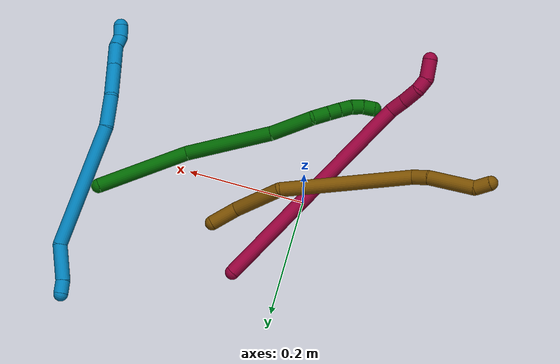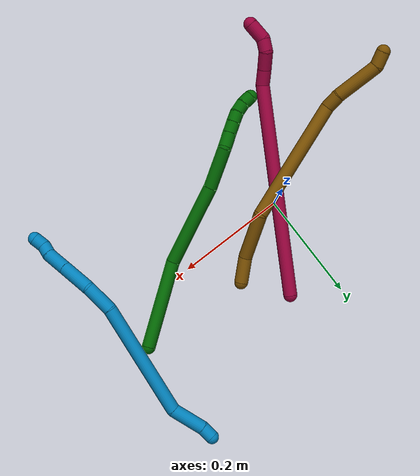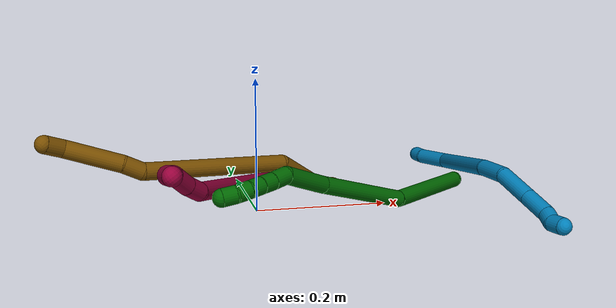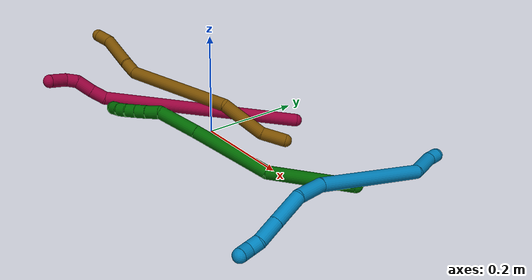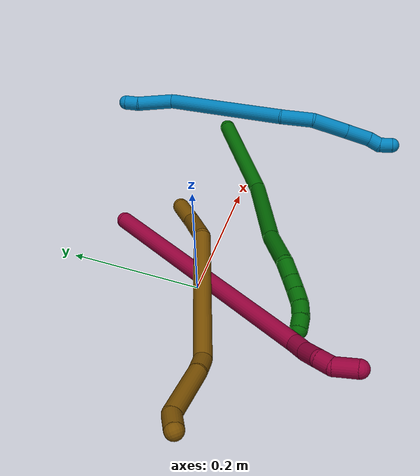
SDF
<sdf version="1.7">
 <world name="default">
  <model name="6">
   <static>0</static>
   <link name="6">
    <collision name="collision-cylinder-e_1_1_4">
     <pose>-0.076338 0.022249 0.011051 -1.10981 -1.25618 0.845954</pose>
     <geometry><cylinder><radius>0.0125</radius><length>0.160558</length></cylinder></geometry>
     <surface>
      <friction><ode><mu>1.16</mu><mu2>1.16</mu2><slip1>0</slip1><slip2>0</slip2></ode></friction>
      <contact><ode><kp>1e+06</kp><kd>1</kd><max_vel>0</max_vel><min_depth>0.001</min_depth></ode></contact>
     </surface>
    </collision>
    <visual name="visual-cylinder-e_1_1_4">
     <pose>-0.076338 0.022249 0.011051 -1.10981 -1.25618 0.845954</pose>
     <geometry><cylinder><radius>0.0125</radius><length>0.160558</length></cylinder></geometry>
     <material><ambient>0 0.392157 0.003922 1</ambient></material>
    </visual>
    <collision name="collision-cylinder-e_2_4_5">
     <pose>-0.21326 0.083544 0.049692 -0.955645 -0.902697 0.491858</pose>
     <geometry><cylinder><radius>0.0125</radius><length>0.154352</length></cylinder></geometry>
     <surface>
      <friction><ode><mu>1.16</mu><mu2>1.16</mu2><slip1>0</slip1><slip2>0</slip2></ode></friction>
      <contact><ode><kp>1e+06</kp><kd>1</kd><max_vel>0</max_vel><min_depth>0.001</min_depth></ode></contact>
     </surface>
    </collision>
    <visual name="visual-cylinder-e_2_4_5">
     <pose>-0.21326 0.083544 0.049692 -0.955645 -0.902697 0.491858</pose>
     <geometry><cylinder><radius>0.0125</radius><length>0.154352</length></cylinder></geometry>
     <material><ambient>0 0.392157 0.003922 1</ambient></material>
    </visual>
    <collision name="collision-cylinder-e_3_5_6">
     <pose>-0.30433 0.138268 0.094002 -0.753262 -0.926125 0.389917</pose>
     <geometry><cylinder><radius>0.0125</radius><length>0.076284</length></cylinder></geometry>
     <surface>
      <friction><ode><mu>1.16</mu><mu2>1.16</mu2><slip1>0</slip1><slip2>0</slip2></ode></friction>
      <contact><ode><kp>1e+06</kp><kd>1</kd><max_vel>0</max_vel><min_depth>0.001</min_depth></ode></contact>
     </surface>
    </collision>
    <visual name="visual-cylinder-e_3_5_6">
     <pose>-0.30433 0.138268 0.094002 -0.753262 -0.926125 0.389917</pose>
     <geometry><cylinder><radius>0.0125</radius><length>0.076284</length></cylinder></geometry>
     <material><ambient>0 0.392157 0.003922 1</ambient></material>
    </visual>
    <collision name="collision-cylinder-e_4_6_7">
     <pose>-0.348075 0.157754 0.110823 -1.54417 -1.29101 1.26551</pose>
     <geometry><cylinder><radius>0.0125</radius><length>0.02759</length></cylinder></geometry>
     <surface>
      <friction><ode><mu>1.16</mu><mu2>1.16</mu2><slip1>0</slip1><slip2>0</slip2></ode></friction>
      <contact><ode><kp>1e+06</kp><kd>1</kd><max_vel>0</max_vel><min_depth>0.001</min_depth></ode></contact>
     </surface>
    </collision>
    <visual name="visual-cylinder-e_4_6_7">
     <pose>-0.348075 0.157754 0.110823 -1.54417 -1.29101 1.26551</pose>
     <geometry><cylinder><radius>0.0125</radius><length>0.02759</length></cylinder></geometry>
     <material><ambient>0 0.392157 0.003922 1</ambient></material>
    </visual>
    <collision name="collision-cylinder-e_5_7_8">
     <pose>-0.371419 0.164799 0.111378 -1.43166 -1.25744 1.12784</pose>
     <geometry><cylinder><radius>0.0125</radius><length>0.021203</length></cylinder></geometry>
     <surface>
      <friction><ode><mu>1.16</mu><mu2>1.16</mu2><slip1>0</slip1><slip2>0</slip2></ode></friction>
      <contact><ode><kp>1e+06</kp><kd>1</kd><max_vel>0</max_vel><min_depth>0.001</min_depth></ode></contact>
     </surface>
    </collision>
    <visual name="visual-cylinder-e_5_7_8">
     <pose>-0.371419 0.164799 0.111378 -1.43166 -1.25744 1.12784</pose>
     <geometry><cylinder><radius>0.0125</radius><length>0.021203</length></cylinder></geometry>
     <material><ambient>0 0.392157 0.003922 1</ambient></material>
    </visual>
    <collision name="collision-cylinder-e_6_8_9">
     <pose>-0.390955 0.171306 0.112016 -1.51425 -1.23714 1.1842</pose>
     <geometry><cylinder><radius>0.0125</radius><length>0.020004</length></cylinder></geometry>
     <surface>
      <friction><ode><mu>1.16</mu><mu2>1.16</mu2><slip1>0</slip1><slip2>0</slip2></ode></friction>
      <contact><ode><kp>1e+06</kp><kd>1</kd><max_vel>0</max_vel><min_depth>0.001</min_depth></ode></contact>
     </surface>
    </collision>
    <visual name="visual-cylinder-e_6_8_9">
     <pose>-0.390955 0.171306 0.112016 -1.51425 -1.23714 1.1842</pose>
     <geometry><cylinder><radius>0.0125</radius><length>0.020004</length></cylinder></geometry>
     <material><ambient>0 0.392157 0.003922 1</ambient></material>
    </visual>
    <collision name="collision-cylinder-e_7_9_10">
     <pose>-0.40908 0.179454 0.111196 -1.77398 -1.04965 1.23538</pose>
     <geometry><cylinder><radius>0.0125</radius><length>0.020007</length></cylinder></geometry>
     <surface>
      <friction><ode><mu>1.16</mu><mu2>1.16</mu2><slip1>0</slip1><slip2>0</slip2></ode></friction>
      <contact><ode><kp>1e+06</kp><kd>1</kd><max_vel>0</max_vel><min_depth>0.001</min_depth></ode></contact>
     </surface>
    </collision>
    <visual name="visual-cylinder-e_7_9_10">
     <pose>-0.40908 0.179454 0.111196 -1.77398 -1.04965 1.23538</pose>
     <geometry><cylinder><radius>0.0125</radius><length>0.020007</length></cylinder></geometry>
     <material><ambient>0 0.392157 0.003922 1</ambient></material>
    </visual>
    <collision name="collision-cylinder-e_8_10_2">
     <pose>-0.425043 0.190997 0.108611 -1.80368 -0.816337 1.00111</pose>
     <geometry><cylinder><radius>0.0125</radius><length>0.020003</length></cylinder></geometry>
     <surface>
      <friction><ode><mu>1.16</mu><mu2>1.16</mu2><slip1>0</slip1><slip2>0</slip2></ode></friction>
      <contact><ode><kp>1e+06</kp><kd>1</kd><max_vel>0</max_vel><min_depth>0.001</min_depth></ode></contact>
     </surface>
    </collision>
    <visual name="visual-cylinder-e_8_10_2">
     <pose>-0.425043 0.190997 0.108611 -1.80368 -0.816337 1.00111</pose>
     <geometry><cylinder><radius>0.0125</radius><length>0.020003</length></cylinder></geometry>
     <material><ambient>0 0.392157 0.003922 1</ambient></material>
    </visual>
    <collision name="collision-sphere-2">
     <pose>-0.432331 0.197662 0.10703 0 -0 0</pose>
     <geometry><sphere><radius>0.0125</radius></sphere></geometry>
     <surface>
      <friction><ode><mu>1.16</mu><mu2>1.16</mu2><slip1>0</slip1><slip2>0</slip2></ode></friction>
      <contact><ode><kp>1e+06</kp><kd>1</kd><max_vel>0</max_vel><min_depth>0.001</min_depth></ode></contact>
     </surface>
    </collision>
    <visual name="visual-sphere-2">
     <pose>-0.432331 0.197662 0.10703 0 -0 0</pose>
     <geometry><sphere><radius>0.0125</radius></sphere></geometry>
     <material><ambient>0 0.392157 0.003922 1</ambient></material>
    </visual>
    <collision name="collision-sphere-10">
     <pose>-0.417756 0.184332 0.110191 0 -0 0</pose>
     <geometry><sphere><radius>0.0125</radius></sphere></geometry>
     <surface>
      <friction><ode><mu>1.16</mu><mu2>1.16</mu2><slip1>0</slip1><slip2>0</slip2></ode></friction>
      <contact><ode><kp>1e+06</kp><kd>1</kd><max_vel>0</max_vel><min_depth>0.001</min_depth></ode></contact>
     </surface>
    </collision>
    <visual name="visual-sphere-10">
     <pose>-0.417756 0.184332 0.110191 0 -0 0</pose>
     <geometry><sphere><radius>0.0125</radius></sphere></geometry>
     <material><ambient>0 0.392157 0.003922 1</ambient></material>
    </visual>
    <collision name="collision-sphere-9">
     <pose>-0.400405 0.174576 0.112201 0 -0 0</pose>
     <geometry><sphere><radius>0.0125</radius></sphere></geometry>
     <surface>
      <friction><ode><mu>1.16</mu><mu2>1.16</mu2><slip1>0</slip1><slip2>0</slip2></ode></friction>
      <contact><ode><kp>1e+06</kp><kd>1</kd><max_vel>0</max_vel><min_depth>0.001</min_depth></ode></contact>
     </surface>
    </collision>
    <visual name="visual-sphere-9">
     <pose>-0.400405 0.174576 0.112201 0 -0 0</pose>
     <geometry><sphere><radius>0.0125</radius></sphere></geometry>
     <material><ambient>0 0.392157 0.003922 1</ambient></material>
    </visual>
    <collision name="collision-sphere-4">
     <pose>-0.152677 0.044498 0.022101 0 -0 0</pose>
     <geometry><sphere><radius>0.0125</radius></sphere></geometry>
     <surface>
      <friction><ode><mu>1.16</mu><mu2>1.16</mu2><slip1>0</slip1><slip2>0</slip2></ode></friction>
      <contact><ode><kp>1e+06</kp><kd>1</kd><max_vel>0</max_vel><min_depth>0.001</min_depth></ode></contact>
     </surface>
    </collision>
    <visual name="visual-sphere-4">
     <pose>-0.152677 0.044498 0.022101 0 -0 0</pose>
     <geometry><sphere><radius>0.0125</radius></sphere></geometry>
     <material><ambient>0 0.392157 0.003922 1</ambient></material>
    </visual>
    <collision name="collision-sphere-1">
     <geometry><sphere><radius>0.0125</radius></sphere></geometry>
     <surface>
      <friction><ode><mu>1.16</mu><mu2>1.16</mu2><slip1>0</slip1><slip2>0</slip2></ode></friction>
      <contact><ode><kp>1e+06</kp><kd>1</kd><max_vel>0</max_vel><min_depth>0.001</min_depth></ode></contact>
     </surface>
    </collision>
    <visual name="visual-sphere-1">
     <geometry><sphere><radius>0.0125</radius></sphere></geometry>
     <material><ambient>0 0.392157 0.003922 1</ambient></material>
    </visual>
    <collision name="collision-sphere-8">
     <pose>-0.381504 0.168035 0.111831 0 -0 0</pose>
     <geometry><sphere><radius>0.0125</radius></sphere></geometry>
     <surface>
      <friction><ode><mu>1.16</mu><mu2>1.16</mu2><slip1>0</slip1><slip2>0</slip2></ode></friction>
      <contact><ode><kp>1e+06</kp><kd>1</kd><max_vel>0</max_vel><min_depth>0.001</min_depth></ode></contact>
     </surface>
    </collision>
    <visual name="visual-sphere-8">
     <pose>-0.381504 0.168035 0.111831 0 -0 0</pose>
     <geometry><sphere><radius>0.0125</radius></sphere></geometry>
     <material><ambient>0 0.392157 0.003922 1</ambient></material>
    </visual>
    <collision name="collision-sphere-5">
     <pose>-0.273843 0.12259 0.077282 0 -0 0</pose>
     <geometry><sphere><radius>0.0125</radius></sphere></geometry>
     <surface>
      <friction><ode><mu>1.16</mu><mu2>1.16</mu2><slip1>0</slip1><slip2>0</slip2></ode></friction>
      <contact><ode><kp>1e+06</kp><kd>1</kd><max_vel>0</max_vel><min_depth>0.001</min_depth></ode></contact>
     </surface>
    </collision>
    <visual name="visual-sphere-5">
     <pose>-0.273843 0.12259 0.077282 0 -0 0</pose>
     <geometry><sphere><radius>0.0125</radius></sphere></geometry>
     <material><ambient>0 0.392157 0.003922 1</ambient></material>
    </visual>
    <collision name="collision-sphere-6">
     <pose>-0.334817 0.153946 0.110722 0 -0 0</pose>
     <geometry><sphere><radius>0.0125</radius></sphere></geometry>
     <surface>
      <friction><ode><mu>1.16</mu><mu2>1.16</mu2><slip1>0</slip1><slip2>0</slip2></ode></friction>
      <contact><ode><kp>1e+06</kp><kd>1</kd><max_vel>0</max_vel><min_depth>0.001</min_depth></ode></contact>
     </surface>
    </collision>
    <visual name="visual-sphere-6">
     <pose>-0.334817 0.153946 0.110722 0 -0 0</pose>
     <geometry><sphere><radius>0.0125</radius></sphere></geometry>
     <material><ambient>0 0.392157 0.003922 1</ambient></material>
    </visual>
    <collision name="collision-sphere-7">
     <pose>-0.361333 0.161562 0.110925 0 -0 0</pose>
     <geometry><sphere><radius>0.0125</radius></sphere></geometry>
     <surface>
      <friction><ode><mu>1.16</mu><mu2>1.16</mu2><slip1>0</slip1><slip2>0</slip2></ode></friction>
      <contact><ode><kp>1e+06</kp><kd>1</kd><max_vel>0</max_vel><min_depth>0.001</min_depth></ode></contact>
     </surface>
    </collision>
    <visual name="visual-sphere-7">
     <pose>-0.361333 0.161562 0.110925 0 -0 0</pose>
     <geometry><sphere><radius>0.0125</radius></sphere></geometry>
     <material><ambient>0 0.392157 0.003922 1</ambient></material>
    </visual>
    <inertial>
     <pose>-0.22075 0.091399 0.057345 0 -0 0</pose>
     <mass>0.5</mass>
     <inertia>
      <ixx>0.000418</ixx>
      <ixy>0</ixy>
      <ixz>0</ixz>
      <iyy>0.000824</iyy>
      <iyz>0</iyz>
      <izz>0.000352</izz>
     </inertia>
    </inertial>
   </link>
   <pose>0.342558 0.068951 0.01251 0.22602 -0.201247 0.881969</pose>
  </model>
  <model name="8">
   <static>0</static>
   <link name="8">
    <collision name="collision-cylinder-e_1_1_4">
     <pose>-0.085829 -0.161103 -0.056703 1.90922 -0.465676 -0.646256</pose>
     <geometry><cylinder><radius>0.0125</radius><length>0.382288</length></cylinder></geometry>
     <surface>
      <friction><ode><mu>1.16</mu><mu2>1.16</mu2><slip1>0</slip1><slip2>0</slip2></ode></friction>
      <contact><ode><kp>1e+06</kp><kd>1</kd><max_vel>0</max_vel><min_depth>0.001</min_depth></ode></contact>
     </surface>
    </collision>
    <visual name="visual-cylinder-e_1_1_4">
     <pose>-0.085829 -0.161103 -0.056703 1.90922 -0.465676 -0.646256</pose>
     <geometry><cylinder><radius>0.0125</radius><length>0.382288</length></cylinder></geometry>
     <material><ambient>0.584314 0 0.227451 1</ambient></material>
    </visual>
    <collision name="collision-cylinder-e_2_4_5">
     <pose>-0.17723 -0.331988 -0.122597 2.32503 -0.393495 -0.86355</pose>
     <geometry><cylinder><radius>0.0125</radius><length>0.029064</length></cylinder></geometry>
     <surface>
      <friction><ode><mu>1.16</mu><mu2>1.16</mu2><slip1>0</slip1><slip2>0</slip2></ode></friction>
      <contact><ode><kp>1e+06</kp><kd>1</kd><max_vel>0</max_vel><min_depth>0.001</min_depth></ode></contact>
     </surface>
    </collision>
    <visual name="visual-cylinder-e_2_4_5">
     <pose>-0.17723 -0.331988 -0.122597 2.32503 -0.393495 -0.86355</pose>
     <geometry><cylinder><radius>0.0125</radius><length>0.029064</length></cylinder></geometry>
     <material><ambient>0.584314 0 0.227451 1</ambient></material>
    </visual>
    <collision name="collision-cylinder-e_3_5_6">
     <pose>-0.190164 -0.351194 -0.143011 2.44313 -0.465494 -1.15407</pose>
     <geometry><cylinder><radius>0.0125</radius><length>0.032804</length></cylinder></geometry>
     <surface>
      <friction><ode><mu>1.16</mu><mu2>1.16</mu2><slip1>0</slip1><slip2>0</slip2></ode></friction>
      <contact><ode><kp>1e+06</kp><kd>1</kd><max_vel>0</max_vel><min_depth>0.001</min_depth></ode></contact>
     </surface>
    </collision>
    <visual name="visual-cylinder-e_3_5_6">
     <pose>-0.190164 -0.351194 -0.143011 2.44313 -0.465494 -1.15407</pose>
     <geometry><cylinder><radius>0.0125</radius><length>0.032804</length></cylinder></geometry>
     <material><ambient>0.584314 0 0.227451 1</ambient></material>
    </visual>
    <collision name="collision-cylinder-e_4_6_7">
     <pose>-0.203534 -0.369387 -0.157428 1.91987 -0.572081 -0.795309</pose>
     <geometry><cylinder><radius>0.0125</radius><length>0.022196</length></cylinder></geometry>
     <surface>
      <friction><ode><mu>1.16</mu><mu2>1.16</mu2><slip1>0</slip1><slip2>0</slip2></ode></friction>
      <contact><ode><kp>1e+06</kp><kd>1</kd><max_vel>0</max_vel><min_depth>0.001</min_depth></ode></contact>
     </surface>
    </collision>
    <visual name="visual-cylinder-e_4_6_7">
     <pose>-0.203534 -0.369387 -0.157428 1.91987 -0.572081 -0.795309</pose>
     <geometry><cylinder><radius>0.0125</radius><length>0.022196</length></cylinder></geometry>
     <material><ambient>0.584314 0 0.227451 1</ambient></material>
    </visual>
    <collision name="collision-cylinder-e_5_7_2">
     <pose>-0.223484 -0.387545 -0.1599 1.49433 -0.976746 -0.914699</pose>
     <geometry><cylinder><radius>0.0125</radius><length>0.033647</length></cylinder></geometry>
     <surface>
      <friction><ode><mu>1.16</mu><mu2>1.16</mu2><slip1>0</slip1><slip2>0</slip2></ode></friction>
      <contact><ode><kp>1e+06</kp><kd>1</kd><max_vel>0</max_vel><min_depth>0.001</min_depth></ode></contact>
     </surface>
    </collision>
    <visual name="visual-cylinder-e_5_7_2">
     <pose>-0.223484 -0.387545 -0.1599 1.49433 -0.976746 -0.914699</pose>
     <geometry><cylinder><radius>0.0125</radius><length>0.033647</length></cylinder></geometry>
     <material><ambient>0.584314 0 0.227451 1</ambient></material>
    </visual>
    <collision name="collision-sphere-2">
     <pose>-0.237426 -0.396934 -0.15918 0 -0 0</pose>
     <geometry><sphere><radius>0.0125</radius></sphere></geometry>
     <surface>
      <friction><ode><mu>1.16</mu><mu2>1.16</mu2><slip1>0</slip1><slip2>0</slip2></ode></friction>
      <contact><ode><kp>1e+06</kp><kd>1</kd><max_vel>0</max_vel><min_depth>0.001</min_depth></ode></contact>
     </surface>
    </collision>
    <visual name="visual-sphere-2">
     <pose>-0.237426 -0.396934 -0.15918 0 -0 0</pose>
     <geometry><sphere><radius>0.0125</radius></sphere></geometry>
     <material><ambient>0.584314 0 0.227451 1</ambient></material>
    </visual>
    <collision name="collision-sphere-7">
     <pose>-0.209543 -0.378156 -0.160619 0 -0 0</pose>
     <geometry><sphere><radius>0.0125</radius></sphere></geometry>
     <surface>
      <friction><ode><mu>1.16</mu><mu2>1.16</mu2><slip1>0</slip1><slip2>0</slip2></ode></friction>
      <contact><ode><kp>1e+06</kp><kd>1</kd><max_vel>0</max_vel><min_depth>0.001</min_depth></ode></contact>
     </surface>
    </collision>
    <visual name="visual-sphere-7">
     <pose>-0.209543 -0.378156 -0.160619 0 -0 0</pose>
     <geometry><sphere><radius>0.0125</radius></sphere></geometry>
     <material><ambient>0.584314 0 0.227451 1</ambient></material>
    </visual>
    <collision name="collision-sphere-6">
     <pose>-0.197526 -0.360619 -0.154236 0 -0 0</pose>
     <geometry><sphere><radius>0.0125</radius></sphere></geometry>
     <surface>
      <friction><ode><mu>1.16</mu><mu2>1.16</mu2><slip1>0</slip1><slip2>0</slip2></ode></friction>
      <contact><ode><kp>1e+06</kp><kd>1</kd><max_vel>0</max_vel><min_depth>0.001</min_depth></ode></contact>
     </surface>
    </collision>
    <visual name="visual-sphere-6">
     <pose>-0.197526 -0.360619 -0.154236 0 -0 0</pose>
     <geometry><sphere><radius>0.0125</radius></sphere></geometry>
     <material><ambient>0.584314 0 0.227451 1</ambient></material>
    </visual>
    <collision name="collision-sphere-5">
     <pose>-0.182802 -0.341769 -0.131787 0 -0 0</pose>
     <geometry><sphere><radius>0.0125</radius></sphere></geometry>
     <surface>
      <friction><ode><mu>1.16</mu><mu2>1.16</mu2><slip1>0</slip1><slip2>0</slip2></ode></friction>
      <contact><ode><kp>1e+06</kp><kd>1</kd><max_vel>0</max_vel><min_depth>0.001</min_depth></ode></contact>
     </surface>
    </collision>
    <visual name="visual-sphere-5">
     <pose>-0.182802 -0.341769 -0.131787 0 -0 0</pose>
     <geometry><sphere><radius>0.0125</radius></sphere></geometry>
     <material><ambient>0.584314 0 0.227451 1</ambient></material>
    </visual>
    <collision name="collision-sphere-1">
     <geometry><sphere><radius>0.0125</radius></sphere></geometry>
     <surface>
      <friction><ode><mu>1.16</mu><mu2>1.16</mu2><slip1>0</slip1><slip2>0</slip2></ode></friction>
      <contact><ode><kp>1e+06</kp><kd>1</kd><max_vel>0</max_vel><min_depth>0.001</min_depth></ode></contact>
     </surface>
    </collision>
    <visual name="visual-sphere-1">
     <geometry><sphere><radius>0.0125</radius></sphere></geometry>
     <material><ambient>0.584314 0 0.227451 1</ambient></material>
    </visual>
    <collision name="collision-sphere-4">
     <pose>-0.171658 -0.322206 -0.113406 0 -0 0</pose>
     <geometry><sphere><radius>0.0125</radius></sphere></geometry>
     <surface>
      <friction><ode><mu>1.16</mu><mu2>1.16</mu2><slip1>0</slip1><slip2>0</slip2></ode></friction>
      <contact><ode><kp>1e+06</kp><kd>1</kd><max_vel>0</max_vel><min_depth>0.001</min_depth></ode></contact>
     </surface>
    </collision>
    <visual name="visual-sphere-4">
     <pose>-0.171658 -0.322206 -0.113406 0 -0 0</pose>
     <geometry><sphere><radius>0.0125</radius></sphere></geometry>
     <material><ambient>0.584314 0 0.227451 1</ambient></material>
    </visual>
    <inertial>
     <pose>-0.112476 -0.207992 -0.077612 0 -0 0</pose>
     <mass>0.5</mass>
     <inertia>
      <ixx>0.000797</ixx>
      <ixy>0</ixy>
      <ixz>0</ixz>
      <iyy>-0.002597</iyy>
      <iyz>0</iyz>
      <izz>0.006038</izz>
     </inertia>
    </inertial>
   </link>
   <pose>0.081154 0.151151 0.012584 2.75269 0.514749 2.19234</pose>
  </model>
  <model name="9">
   <static>0</static>
   <link name="9">
    <collision name="collision-cylinder-e_1_1_4">
     <pose>-0.003741 -0.003698 -0.01015 2.79219 -0.333365 -1.5229</pose>
     <geometry><cylinder><radius>0.0125</radius><length>0.022864</length></cylinder></geometry>
     <surface>
      <friction><ode><mu>1.16</mu><mu2>1.16</mu2><slip1>0</slip1><slip2>0</slip2></ode></friction>
      <contact><ode><kp>1e+06</kp><kd>1</kd><max_vel>0</max_vel><min_depth>0.001</min_depth></ode></contact>
     </surface>
    </collision>
    <visual name="visual-cylinder-e_1_1_4">
     <pose>-0.003741 -0.003698 -0.01015 2.79219 -0.333365 -1.5229</pose>
     <geometry><cylinder><radius>0.0125</radius><length>0.022864</length></cylinder></geometry>
     <material><ambient>0 0.490196 0.709804 1</ambient></material>
    </visual>
    <collision name="collision-cylinder-e_2_4_5">
     <pose>-0.023761 -0.014036 -0.045876 2.88758 -0.552139 -2.29467</pose>
     <geometry><cylinder><radius>0.0125</radius><length>0.062073</length></cylinder></geometry>
     <surface>
      <friction><ode><mu>1.16</mu><mu2>1.16</mu2><slip1>0</slip1><slip2>0</slip2></ode></friction>
      <contact><ode><kp>1e+06</kp><kd>1</kd><max_vel>0</max_vel><min_depth>0.001</min_depth></ode></contact>
     </surface>
    </collision>
    <visual name="visual-cylinder-e_2_4_5">
     <pose>-0.023761 -0.014036 -0.045876 2.88758 -0.552139 -2.29467</pose>
     <geometry><cylinder><radius>0.0125</radius><length>0.062073</length></cylinder></geometry>
     <material><ambient>0 0.490196 0.709804 1</ambient></material>
    </visual>
    <collision name="collision-cylinder-e_3_5_6">
     <pose>-0.047558 -0.048193 -0.17474 2.88124 -0.070223 -0.524262</pose>
     <geometry><cylinder><radius>0.0125</radius><length>0.214306</length></cylinder></geometry>
     <surface>
      <friction><ode><mu>1.16</mu><mu2>1.16</mu2><slip1>0</slip1><slip2>0</slip2></ode></friction>
      <contact><ode><kp>1e+06</kp><kd>1</kd><max_vel>0</max_vel><min_depth>0.001</min_depth></ode></contact>
     </surface>
    </collision>
    <visual name="visual-cylinder-e_3_5_6">
     <pose>-0.047558 -0.048193 -0.17474 2.88124 -0.070223 -0.524262</pose>
     <geometry><cylinder><radius>0.0125</radius><length>0.214306</length></cylinder></geometry>
     <material><ambient>0 0.490196 0.709804 1</ambient></material>
    </visual>
    <collision name="collision-cylinder-e_4_6_7">
     <pose>-0.063991 -0.084776 -0.301986 2.7798 -0.334868 -1.49195</pose>
     <geometry><cylinder><radius>0.0125</radius><length>0.054251</length></cylinder></geometry>
     <surface>
      <friction><ode><mu>1.16</mu><mu2>1.16</mu2><slip1>0</slip1><slip2>0</slip2></ode></friction>
      <contact><ode><kp>1e+06</kp><kd>1</kd><max_vel>0</max_vel><min_depth>0.001</min_depth></ode></contact>
     </surface>
    </collision>
    <visual name="visual-cylinder-e_4_6_7">
     <pose>-0.063991 -0.084776 -0.301986 2.7798 -0.334868 -1.49195</pose>
     <geometry><cylinder><radius>0.0125</radius><length>0.054251</length></cylinder></geometry>
     <material><ambient>0 0.490196 0.709804 1</ambient></material>
    </visual>
    <collision name="collision-cylinder-e_5_7_8">
     <pose>-0.087051 -0.111652 -0.346155 2.41928 -0.483573 -1.1568</pose>
     <geometry><cylinder><radius>0.0125</radius><length>0.060848</length></cylinder></geometry>
     <surface>
      <friction><ode><mu>1.16</mu><mu2>1.16</mu2><slip1>0</slip1><slip2>0</slip2></ode></friction>
      <contact><ode><kp>1e+06</kp><kd>1</kd><max_vel>0</max_vel><min_depth>0.001</min_depth></ode></contact>
     </surface>
    </collision>
    <visual name="visual-cylinder-e_5_7_8">
     <pose>-0.087051 -0.111652 -0.346155 2.41928 -0.483573 -1.1568</pose>
     <geometry><cylinder><radius>0.0125</radius><length>0.060848</length></cylinder></geometry>
     <material><ambient>0 0.490196 0.709804 1</ambient></material>
    </visual>
    <collision name="collision-cylinder-e_6_8_9">
     <pose>-0.111411 -0.14221 -0.380702 2.41473 -0.489188 -1.16153</pose>
     <geometry><cylinder><radius>0.0125</radius><length>0.043474</length></cylinder></geometry>
     <surface>
      <friction><ode><mu>1.16</mu><mu2>1.16</mu2><slip1>0</slip1><slip2>0</slip2></ode></friction>
      <contact><ode><kp>1e+06</kp><kd>1</kd><max_vel>0</max_vel><min_depth>0.001</min_depth></ode></contact>
     </surface>
    </collision>
    <visual name="visual-cylinder-e_6_8_9">
     <pose>-0.111411 -0.14221 -0.380702 2.41473 -0.489188 -1.16153</pose>
     <geometry><cylinder><radius>0.0125</radius><length>0.043474</length></cylinder></geometry>
     <material><ambient>0 0.490196 0.709804 1</ambient></material>
    </visual>
    <collision name="collision-cylinder-e_7_9_10">
     <pose>-0.123523 -0.162051 -0.402366 2.3725 -0.184062 -0.448433</pose>
     <geometry><cylinder><radius>0.0125</radius><length>0.020741</length></cylinder></geometry>
     <surface>
      <friction><ode><mu>1.16</mu><mu2>1.16</mu2><slip1>0</slip1><slip2>0</slip2></ode></friction>
      <contact><ode><kp>1e+06</kp><kd>1</kd><max_vel>0</max_vel><min_depth>0.001</min_depth></ode></contact>
     </surface>
    </collision>
    <visual name="visual-cylinder-e_7_9_10">
     <pose>-0.123523 -0.162051 -0.402366 2.3725 -0.184062 -0.448433</pose>
     <geometry><cylinder><radius>0.0125</radius><length>0.020741</length></cylinder></geometry>
     <material><ambient>0 0.490196 0.709804 1</ambient></material>
    </visual>
    <collision name="collision-cylinder-e_8_10_2">
     <pose>-0.130132 -0.172206 -0.418823 2.81784 -0.454885 -1.91266</pose>
     <geometry><cylinder><radius>0.0125</radius><length>0.021445</length></cylinder></geometry>
     <surface>
      <friction><ode><mu>1.16</mu><mu2>1.16</mu2><slip1>0</slip1><slip2>0</slip2></ode></friction>
      <contact><ode><kp>1e+06</kp><kd>1</kd><max_vel>0</max_vel><min_depth>0.001</min_depth></ode></contact>
     </surface>
    </collision>
    <visual name="visual-cylinder-e_8_10_2">
     <pose>-0.130132 -0.172206 -0.418823 2.81784 -0.454885 -1.91266</pose>
     <geometry><cylinder><radius>0.0125</radius><length>0.021445</length></cylinder></geometry>
     <material><ambient>0 0.490196 0.709804 1</ambient></material>
    </visual>
    <collision name="collision-sphere-2">
     <pose>-0.134843 -0.17527 -0.427955 0 -0 0</pose>
     <geometry><sphere><radius>0.0125</radius></sphere></geometry>
     <surface>
      <friction><ode><mu>1.16</mu><mu2>1.16</mu2><slip1>0</slip1><slip2>0</slip2></ode></friction>
      <contact><ode><kp>1e+06</kp><kd>1</kd><max_vel>0</max_vel><min_depth>0.001</min_depth></ode></contact>
     </surface>
    </collision>
    <visual name="visual-sphere-2">
     <pose>-0.134843 -0.17527 -0.427955 0 -0 0</pose>
     <geometry><sphere><radius>0.0125</radius></sphere></geometry>
     <material><ambient>0 0.490196 0.709804 1</ambient></material>
    </visual>
    <collision name="collision-sphere-10">
     <pose>-0.125421 -0.169142 -0.409692 0 -0 0</pose>
     <geometry><sphere><radius>0.0125</radius></sphere></geometry>
     <surface>
      <friction><ode><mu>1.16</mu><mu2>1.16</mu2><slip1>0</slip1><slip2>0</slip2></ode></friction>
      <contact><ode><kp>1e+06</kp><kd>1</kd><max_vel>0</max_vel><min_depth>0.001</min_depth></ode></contact>
     </surface>
    </collision>
    <visual name="visual-sphere-10">
     <pose>-0.125421 -0.169142 -0.409692 0 -0 0</pose>
     <geometry><sphere><radius>0.0125</radius></sphere></geometry>
     <material><ambient>0 0.490196 0.709804 1</ambient></material>
    </visual>
    <collision name="collision-sphere-9">
     <pose>-0.121625 -0.154961 -0.39504 0 -0 0</pose>
     <geometry><sphere><radius>0.0125</radius></sphere></geometry>
     <surface>
      <friction><ode><mu>1.16</mu><mu2>1.16</mu2><slip1>0</slip1><slip2>0</slip2></ode></friction>
      <contact><ode><kp>1e+06</kp><kd>1</kd><max_vel>0</max_vel><min_depth>0.001</min_depth></ode></contact>
     </surface>
    </collision>
    <visual name="visual-sphere-9">
     <pose>-0.121625 -0.154961 -0.39504 0 -0 0</pose>
     <geometry><sphere><radius>0.0125</radius></sphere></geometry>
     <material><ambient>0 0.490196 0.709804 1</ambient></material>
    </visual>
    <collision name="collision-sphere-4">
     <pose>-0.007482 -0.007396 -0.020299 0 -0 0</pose>
     <geometry><sphere><radius>0.0125</radius></sphere></geometry>
     <surface>
      <friction><ode><mu>1.16</mu><mu2>1.16</mu2><slip1>0</slip1><slip2>0</slip2></ode></friction>
      <contact><ode><kp>1e+06</kp><kd>1</kd><max_vel>0</max_vel><min_depth>0.001</min_depth></ode></contact>
     </surface>
    </collision>
    <visual name="visual-sphere-4">
     <pose>-0.007482 -0.007396 -0.020299 0 -0 0</pose>
     <geometry><sphere><radius>0.0125</radius></sphere></geometry>
     <material><ambient>0 0.490196 0.709804 1</ambient></material>
    </visual>
    <collision name="collision-sphere-1">
     <geometry><sphere><radius>0.0125</radius></sphere></geometry>
     <surface>
      <friction><ode><mu>1.16</mu><mu2>1.16</mu2><slip1>0</slip1><slip2>0</slip2></ode></friction>
      <contact><ode><kp>1e+06</kp><kd>1</kd><max_vel>0</max_vel><min_depth>0.001</min_depth></ode></contact>
     </surface>
    </collision>
    <visual name="visual-sphere-1">
     <geometry><sphere><radius>0.0125</radius></sphere></geometry>
     <material><ambient>0 0.490196 0.709804 1</ambient></material>
    </visual>
    <collision name="collision-sphere-8">
     <pose>-0.101196 -0.12946 -0.366364 0 -0 0</pose>
     <geometry><sphere><radius>0.0125</radius></sphere></geometry>
     <surface>
      <friction><ode><mu>1.16</mu><mu2>1.16</mu2><slip1>0</slip1><slip2>0</slip2></ode></friction>
      <contact><ode><kp>1e+06</kp><kd>1</kd><max_vel>0</max_vel><min_depth>0.001</min_depth></ode></contact>
     </surface>
    </collision>
    <visual name="visual-sphere-8">
     <pose>-0.101196 -0.12946 -0.366364 0 -0 0</pose>
     <geometry><sphere><radius>0.0125</radius></sphere></geometry>
     <material><ambient>0 0.490196 0.709804 1</ambient></material>
    </visual>
    <collision name="collision-sphere-5">
     <pose>-0.04004 -0.020677 -0.071453 0 -0 0</pose>
     <geometry><sphere><radius>0.0125</radius></sphere></geometry>
     <surface>
      <friction><ode><mu>1.16</mu><mu2>1.16</mu2><slip1>0</slip1><slip2>0</slip2></ode></friction>
      <contact><ode><kp>1e+06</kp><kd>1</kd><max_vel>0</max_vel><min_depth>0.001</min_depth></ode></contact>
     </surface>
    </collision>
    <visual name="visual-sphere-5">
     <pose>-0.04004 -0.020677 -0.071453 0 -0 0</pose>
     <geometry><sphere><radius>0.0125</radius></sphere></geometry>
     <material><ambient>0 0.490196 0.709804 1</ambient></material>
    </visual>
    <collision name="collision-sphere-6">
     <pose>-0.055077 -0.075709 -0.278026 0 -0 0</pose>
     <geometry><sphere><radius>0.0125</radius></sphere></geometry>
     <surface>
      <friction><ode><mu>1.16</mu><mu2>1.16</mu2><slip1>0</slip1><slip2>0</slip2></ode></friction>
      <contact><ode><kp>1e+06</kp><kd>1</kd><max_vel>0</max_vel><min_depth>0.001</min_depth></ode></contact>
     </surface>
    </collision>
    <visual name="visual-sphere-6">
     <pose>-0.055077 -0.075709 -0.278026 0 -0 0</pose>
     <geometry><sphere><radius>0.0125</radius></sphere></geometry>
     <material><ambient>0 0.490196 0.709804 1</ambient></material>
    </visual>
    <collision name="collision-sphere-7">
     <pose>-0.072906 -0.093844 -0.325946 0 -0 0</pose>
     <geometry><sphere><radius>0.0125</radius></sphere></geometry>
     <surface>
      <friction><ode><mu>1.16</mu><mu2>1.16</mu2><slip1>0</slip1><slip2>0</slip2></ode></friction>
      <contact><ode><kp>1e+06</kp><kd>1</kd><max_vel>0</max_vel><min_depth>0.001</min_depth></ode></contact>
     </surface>
    </collision>
    <visual name="visual-sphere-7">
     <pose>-0.072906 -0.093844 -0.325946 0 -0 0</pose>
     <geometry><sphere><radius>0.0125</radius></sphere></geometry>
     <material><ambient>0 0.490196 0.709804 1</ambient></material>
    </visual>
    <inertial>
     <pose>-0.061434 -0.071826 -0.223701 0 -0 0</pose>
     <mass>0.5</mass>
     <inertia>
      <ixx>0.000235</ixx>
      <ixy>0</ixy>
      <ixz>0</ixz>
      <iyy>-0.001153</iyy>
      <iyz>0</iyz>
      <izz>0.000299</izz>
     </inertia>
    </inertial>
   </link>
   <pose>0.349201 0.265726 0.012258 2.02512 -0.217052 2.93107</pose>
  </model>
  <model name="12">
   <static>0</static>
   <link name="12">
    <collision name="collision-cylinder-e_1_1_4">
     <pose>-0.01019 -0.012699 -0.017409 2.51137 -0.44174 -1.20636</pose>
     <geometry><cylinder><radius>0.0125</radius><length>0.047672</length></cylinder></geometry>
     <surface>
      <friction><ode><mu>1.16</mu><mu2>1.16</mu2><slip1>0</slip1><slip2>0</slip2></ode></friction>
      <contact><ode><kp>1e+06</kp><kd>1</kd><max_vel>0</max_vel><min_depth>0.001</min_depth></ode></contact>
     </surface>
    </collision>
    <visual name="visual-cylinder-e_1_1_4">
     <pose>-0.01019 -0.012699 -0.017409 2.51137 -0.44174 -1.20636</pose>
     <geometry><cylinder><radius>0.0125</radius><length>0.047672</length></cylinder></geometry>
     <material><ambient>0.466667 0.301961 0 1</ambient></material>
    </visual>
    <collision name="collision-cylinder-e_2_4_5">
     <pose>-0.050217 -0.051442 -0.056024 2.25416 -0.726344 -1.34889</pose>
     <geometry><cylinder><radius>0.0125</radius><length>0.089849</length></cylinder></geometry>
     <surface>
      <friction><ode><mu>1.16</mu><mu2>1.16</mu2><slip1>0</slip1><slip2>0</slip2></ode></friction>
      <contact><ode><kp>1e+06</kp><kd>1</kd><max_vel>0</max_vel><min_depth>0.001</min_depth></ode></contact>
     </surface>
    </collision>
    <visual name="visual-cylinder-e_2_4_5">
     <pose>-0.050217 -0.051442 -0.056024 2.25416 -0.726344 -1.34889</pose>
     <geometry><cylinder><radius>0.0125</radius><length>0.089849</length></cylinder></geometry>
     <material><ambient>0.466667 0.301961 0 1</ambient></material>
    </visual>
    <collision name="collision-cylinder-e_3_5_6">
     <pose>-0.149608 -0.095375 -0.163075 2.93614 -0.670578 -2.56631</pose>
     <geometry><cylinder><radius>0.0125</radius><length>0.223851</length></cylinder></geometry>
     <surface>
      <friction><ode><mu>1.16</mu><mu2>1.16</mu2><slip1>0</slip1><slip2>0</slip2></ode></friction>
      <contact><ode><kp>1e+06</kp><kd>1</kd><max_vel>0</max_vel><min_depth>0.001</min_depth></ode></contact>
     </surface>
    </collision>
    <visual name="visual-cylinder-e_3_5_6">
     <pose>-0.149608 -0.095375 -0.163075 2.93614 -0.670578 -2.56631</pose>
     <geometry><cylinder><radius>0.0125</radius><length>0.223851</length></cylinder></geometry>
     <material><ambient>0.466667 0.301961 0 1</ambient></material>
    </visual>
    <collision name="collision-cylinder-e_4_6_7">
     <pose>-0.232023 -0.116732 -0.255187 2.6361 -1.06266 -2.31349</pose>
     <geometry><cylinder><radius>0.0125</radius><length>0.02944</length></cylinder></geometry>
     <surface>
      <friction><ode><mu>1.16</mu><mu2>1.16</mu2><slip1>0</slip1><slip2>0</slip2></ode></friction>
      <contact><ode><kp>1e+06</kp><kd>1</kd><max_vel>0</max_vel><min_depth>0.001</min_depth></ode></contact>
     </surface>
    </collision>
    <visual name="visual-cylinder-e_4_6_7">
     <pose>-0.232023 -0.116732 -0.255187 2.6361 -1.06266 -2.31349</pose>
     <geometry><cylinder><radius>0.0125</radius><length>0.02944</length></cylinder></geometry>
     <material><ambient>0.466667 0.301961 0 1</ambient></material>
    </visual>
    <collision name="collision-cylinder-e_5_7_8">
     <pose>-0.281372 -0.121527 -0.279527 3.06832 -1.10984 -3.02348</pose>
     <geometry><cylinder><radius>0.0125</radius><length>0.081483</length></cylinder></geometry>
     <surface>
      <friction><ode><mu>1.16</mu><mu2>1.16</mu2><slip1>0</slip1><slip2>0</slip2></ode></friction>
      <contact><ode><kp>1e+06</kp><kd>1</kd><max_vel>0</max_vel><min_depth>0.001</min_depth></ode></contact>
     </surface>
    </collision>
    <visual name="visual-cylinder-e_5_7_8">
     <pose>-0.281372 -0.121527 -0.279527 3.06832 -1.10984 -3.02348</pose>
     <geometry><cylinder><radius>0.0125</radius><length>0.081483</length></cylinder></geometry>
     <material><ambient>0.466667 0.301961 0 1</ambient></material>
    </visual>
    <collision name="collision-cylinder-e_6_8_2">
     <pose>-0.326818 -0.128756 -0.306365 2.54892 -0.703048 -1.75309</pose>
     <geometry><cylinder><radius>0.0125</radius><length>0.027705</length></cylinder></geometry>
     <surface>
      <friction><ode><mu>1.16</mu><mu2>1.16</mu2><slip1>0</slip1><slip2>0</slip2></ode></friction>
      <contact><ode><kp>1e+06</kp><kd>1</kd><max_vel>0</max_vel><min_depth>0.001</min_depth></ode></contact>
     </surface>
    </collision>
    <visual name="visual-cylinder-e_6_8_2">
     <pose>-0.326818 -0.128756 -0.306365 2.54892 -0.703048 -1.75309</pose>
     <geometry><cylinder><radius>0.0125</radius><length>0.027705</length></cylinder></geometry>
     <material><ambient>0.466667 0.301961 0 1</ambient></material>
    </visual>
    <collision name="collision-sphere-2">
     <pose>-0.335774 -0.134659 -0.315131 0 -0 0</pose>
     <geometry><sphere><radius>0.0125</radius></sphere></geometry>
     <surface>
      <friction><ode><mu>1.16</mu><mu2>1.16</mu2><slip1>0</slip1><slip2>0</slip2></ode></friction>
      <contact><ode><kp>1e+06</kp><kd>1</kd><max_vel>0</max_vel><min_depth>0.001</min_depth></ode></contact>
     </surface>
    </collision>
    <visual name="visual-sphere-2">
     <pose>-0.335774 -0.134659 -0.315131 0 -0 0</pose>
     <geometry><sphere><radius>0.0125</radius></sphere></geometry>
     <material><ambient>0.466667 0.301961 0 1</ambient></material>
    </visual>
    <collision name="collision-sphere-4">
     <pose>-0.020381 -0.025398 -0.034817 0 -0 0</pose>
     <geometry><sphere><radius>0.0125</radius></sphere></geometry>
     <surface>
      <friction><ode><mu>1.16</mu><mu2>1.16</mu2><slip1>0</slip1><slip2>0</slip2></ode></friction>
      <contact><ode><kp>1e+06</kp><kd>1</kd><max_vel>0</max_vel><min_depth>0.001</min_depth></ode></contact>
     </surface>
    </collision>
    <visual name="visual-sphere-4">
     <pose>-0.020381 -0.025398 -0.034817 0 -0 0</pose>
     <geometry><sphere><radius>0.0125</radius></sphere></geometry>
     <material><ambient>0.466667 0.301961 0 1</ambient></material>
    </visual>
    <collision name="collision-sphere-1">
     <geometry><sphere><radius>0.0125</radius></sphere></geometry>
     <surface>
      <friction><ode><mu>1.16</mu><mu2>1.16</mu2><slip1>0</slip1><slip2>0</slip2></ode></friction>
      <contact><ode><kp>1e+06</kp><kd>1</kd><max_vel>0</max_vel><min_depth>0.001</min_depth></ode></contact>
     </surface>
    </collision>
    <visual name="visual-sphere-1">
     <geometry><sphere><radius>0.0125</radius></sphere></geometry>
     <material><ambient>0.466667 0.301961 0 1</ambient></material>
    </visual>
    <collision name="collision-sphere-8">
     <pose>-0.317862 -0.122854 -0.2976 0 -0 0</pose>
     <geometry><sphere><radius>0.0125</radius></sphere></geometry>
     <surface>
      <friction><ode><mu>1.16</mu><mu2>1.16</mu2><slip1>0</slip1><slip2>0</slip2></ode></friction>
      <contact><ode><kp>1e+06</kp><kd>1</kd><max_vel>0</max_vel><min_depth>0.001</min_depth></ode></contact>
     </surface>
    </collision>
    <visual name="visual-sphere-8">
     <pose>-0.317862 -0.122854 -0.2976 0 -0 0</pose>
     <geometry><sphere><radius>0.0125</radius></sphere></geometry>
     <material><ambient>0.466667 0.301961 0 1</ambient></material>
    </visual>
    <collision name="collision-sphere-5">
     <pose>-0.080053 -0.077486 -0.07723 0 -0 0</pose>
     <geometry><sphere><radius>0.0125</radius></sphere></geometry>
     <surface>
      <friction><ode><mu>1.16</mu><mu2>1.16</mu2><slip1>0</slip1><slip2>0</slip2></ode></friction>
      <contact><ode><kp>1e+06</kp><kd>1</kd><max_vel>0</max_vel><min_depth>0.001</min_depth></ode></contact>
     </surface>
    </collision>
    <visual name="visual-sphere-5">
     <pose>-0.080053 -0.077486 -0.07723 0 -0 0</pose>
     <geometry><sphere><radius>0.0125</radius></sphere></geometry>
     <material><ambient>0.466667 0.301961 0 1</ambient></material>
    </visual>
    <collision name="collision-sphere-6">
     <pose>-0.219162 -0.113264 -0.248921 0 -0 0</pose>
     <geometry><sphere><radius>0.0125</radius></sphere></geometry>
     <surface>
      <friction><ode><mu>1.16</mu><mu2>1.16</mu2><slip1>0</slip1><slip2>0</slip2></ode></friction>
      <contact><ode><kp>1e+06</kp><kd>1</kd><max_vel>0</max_vel><min_depth>0.001</min_depth></ode></contact>
     </surface>
    </collision>
    <visual name="visual-sphere-6">
     <pose>-0.219162 -0.113264 -0.248921 0 -0 0</pose>
     <geometry><sphere><radius>0.0125</radius></sphere></geometry>
     <material><ambient>0.466667 0.301961 0 1</ambient></material>
    </visual>
    <collision name="collision-sphere-7">
     <pose>-0.244883 -0.1202 -0.261453 0 -0 0</pose>
     <geometry><sphere><radius>0.0125</radius></sphere></geometry>
     <surface>
      <friction><ode><mu>1.16</mu><mu2>1.16</mu2><slip1>0</slip1><slip2>0</slip2></ode></friction>
      <contact><ode><kp>1e+06</kp><kd>1</kd><max_vel>0</max_vel><min_depth>0.001</min_depth></ode></contact>
     </surface>
    </collision>
    <visual name="visual-sphere-7">
     <pose>-0.244883 -0.1202 -0.261453 0 -0 0</pose>
     <geometry><sphere><radius>0.0125</radius></sphere></geometry>
     <material><ambient>0.466667 0.301961 0 1</ambient></material>
    </visual>
    <inertial>
     <pose>-0.1546 -0.086967 -0.162291 0 -0 0</pose>
     <mass>0.5</mass>
     <inertia>
      <ixx>-0.001119</ixx>
      <ixy>0</ixy>
      <ixz>0</ixz>
      <iyy>0.000441</iyy>
      <iyz>0</iyz>
      <izz>0.000854</izz>
     </inertia>
    </inertial>
   </link>
   <pose>0.137735 0.078267 0.012519 -0.936356 0.590677 -0.439807</pose>
  </model>
 </world>
</sdf>
